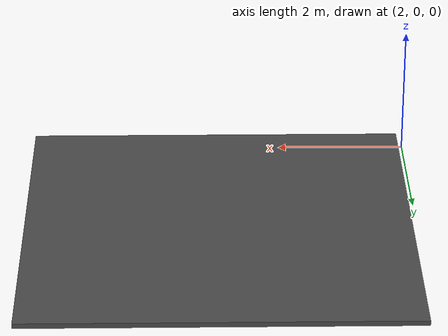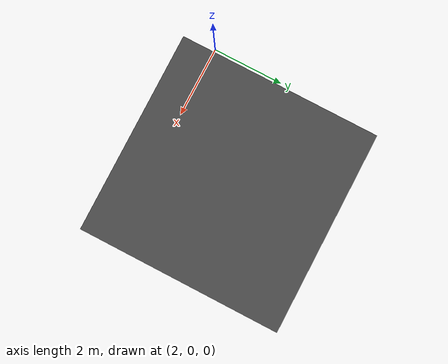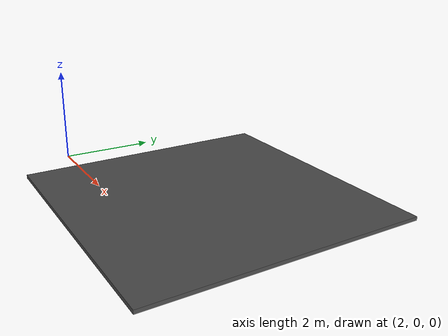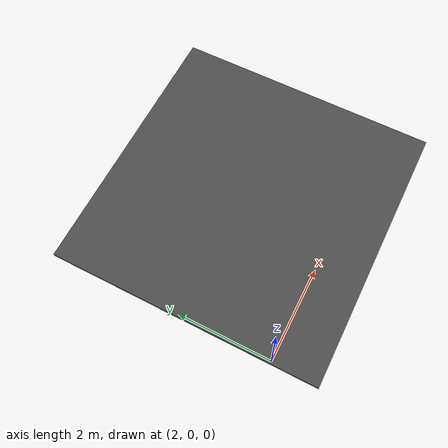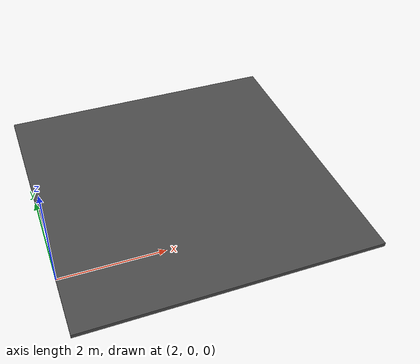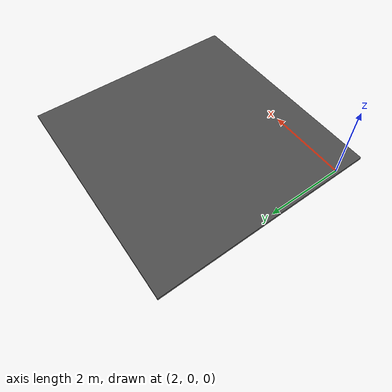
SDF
<sdf version="1.4">
 <world name="default">
  <light name="sun" type="directional">
   <diffuse>1.0 1.0 1.0 1</diffuse>
   <specular>0.2 0.2 0.2 1</specular>
   <attenuation>
    <range>1000</range>
    <constant>0.9</constant>
    <linear>0.01</linear>
    <quadratic>0.001</quadratic>
   </attenuation>
   <direction>1 0 -0.3</direction>
  </light>
  <physics type="ode">
   <max_step_size>0.01</max_step_size>
   <real_time_factor>1</real_time_factor>
   <real_time_update_rate>100</real_time_update_rate>
   <gravity>0 0 -1.622</gravity>
  </physics>
  <model name="ground_plane">
   <static>1</static>
   <link name="link">
    <collision name="collision">
     <geometry><plane><normal>0 0 1</normal><size>100 100</size></plane></geometry>
     <surface><friction><ode><mu>100</mu><mu2>50</mu2></ode></friction></surface>
    </collision>
    <visual name="visual">
     <cast_shadows>0</cast_shadows>
     <geometry><plane><normal>0 0 1</normal><size>100 100</size></plane></geometry>
     <material>
      <script><uri>file://media/materials/scripts/gazebo.material</uri><name>Gazebo/Grey</name></script>
     </material>
    </visual>
    <velocity_decay><linear>0</linear><angular>0</angular></velocity_decay>
    <pose>0 0 -5 0 -0 0</pose>
   </link>
  </model>
  <model name="DemMesh">
   <pose>5.0 2.0 -0.3  0 0 -1.57079632679</pose>
   <static>1</static>
   <link name="link">
    <collision name="collision">
     <geometry><mesh><uri>model://moon/meshes/moon.dae</uri></mesh></geometry>
     <surface><friction><ode><mu>1</mu><mu2>1</mu2></ode></friction></surface>
    </collision>
    <visual name="visual">
     <cast_shadows>0</cast_shadows>
     <geometry><mesh><uri>model://moon/meshes/moon.dae</uri></mesh></geometry>
     <material>
      <script>
       <uri>model://moon/materials/scripts</uri>
       <uri>model://moon/materials/textures</uri>
       <uri>model://moon/materials/programs</uri>
       <name>test/dark_grey_material</name>
      </script>
     </material>
    </visual>
    <velocity_decay><linear>0</linear><angular>0</angular></velocity_decay>
   </link>
  </model>
  <scene><ambient>0.0 0.0 0.0 1</ambient><background>0.0 0.0 0.0 1</background><shadows>1</shadows></scene>
 </world>
</sdf>
